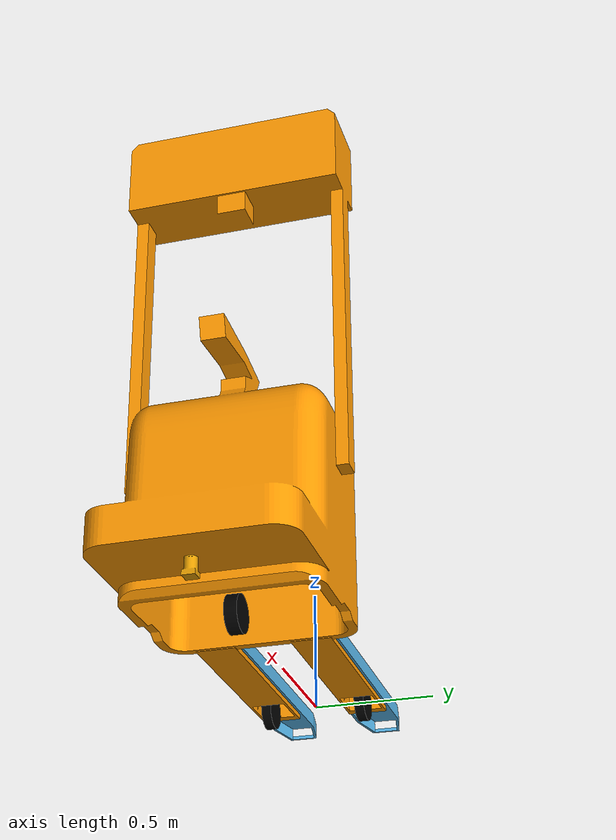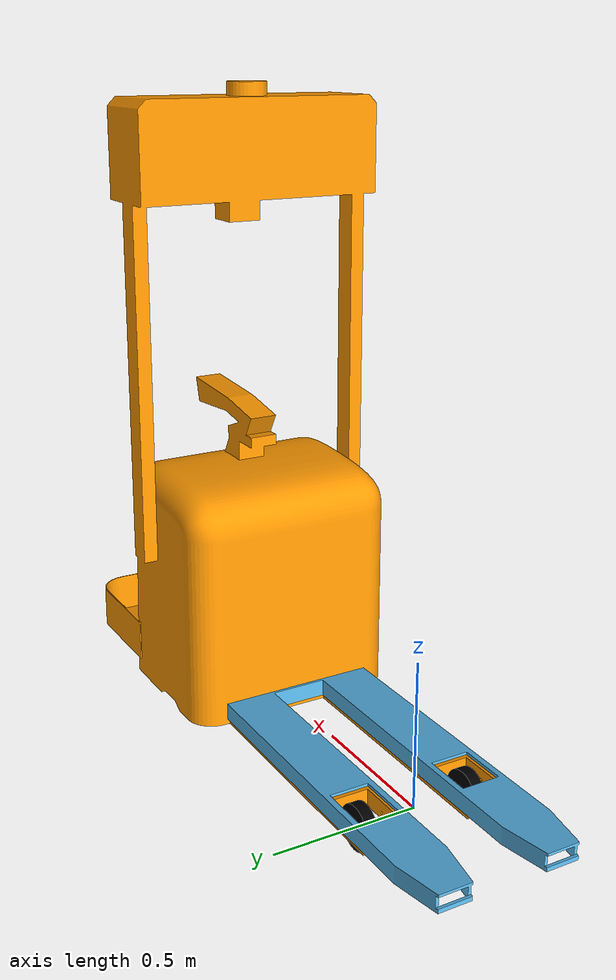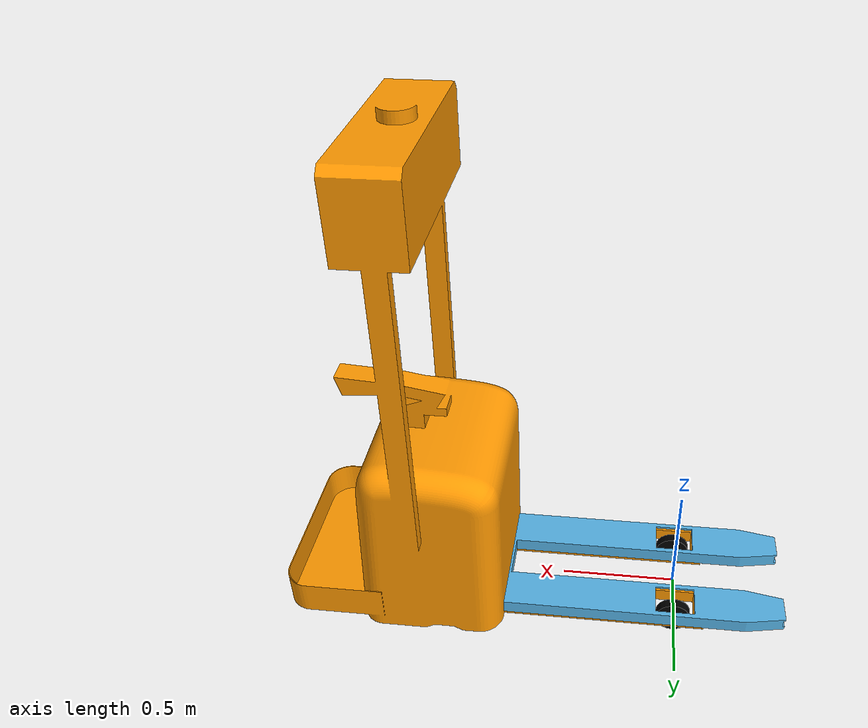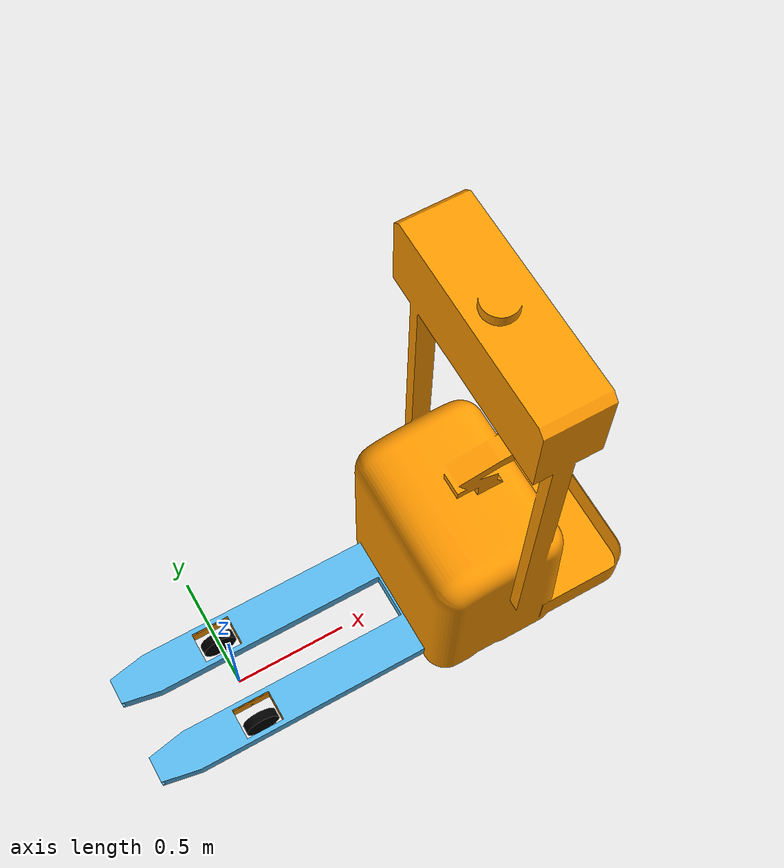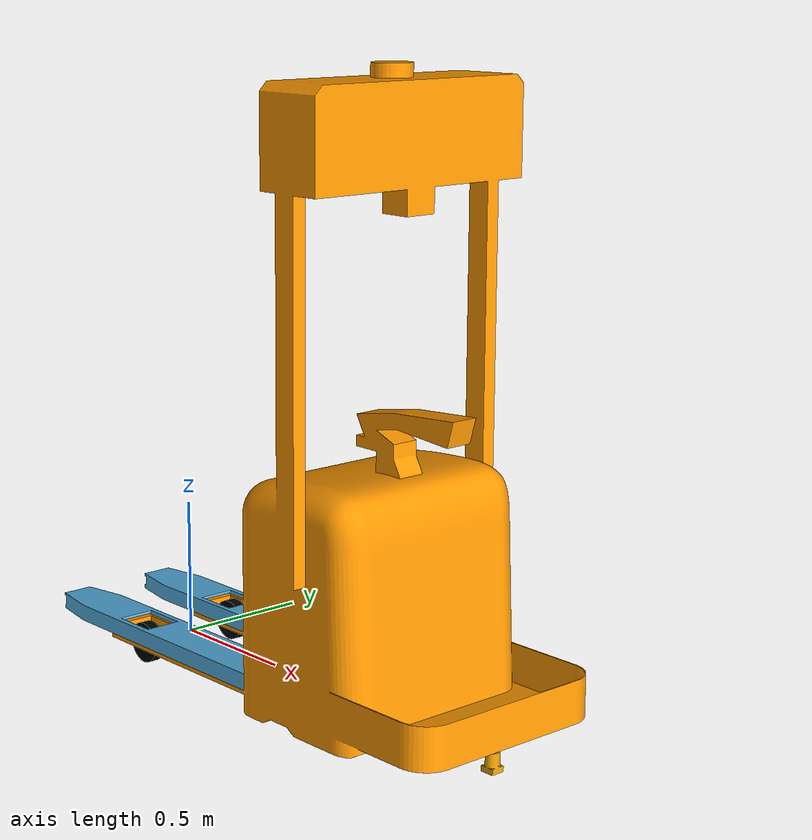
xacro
<?xml version="1.0"?>
<robot name="robot_1" xmlns:xacro="http://ros.org/wiki/xacro">
    <xacro:arg name="robot_name" default="robot1"/>
    <!-- Определение аргумента для namespace с дефолтным значением -->
    <xacro:include filename="$(find multi_robots_rmf_nav2)/urdf/materials.xacro"/>
    <xacro:include filename="$(find multi_robots_rmf_nav2)/urdf/macros.xacro"/>
    <xacro:include filename="$(find multi_robots_rmf_nav2)/urdf/warehouse_bot.xacro"/>
    <xacro:include filename="$(find multi_robots_rmf_nav2)/urdf/gazebo_control.xacro"/>
    <xacro:include filename="$(find multi_robots_rmf_nav2)/urdf/ros2_control.xacro"/>

    <xacro:robot_gazebo_systems robot_name="$(arg robot_name)"/>
    <xacro:robot_gazebo_sensors robot_name="$(arg robot_name)"/>
</robot>

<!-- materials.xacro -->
<robot name="warehouse_bot" xmlns:xacro="http://ros.org/wiki/xacro">

  <material name="black">
    <color rgba="0.0 0.0 0.0 1.0" />
  </material>

  <material name="blue">
    <color rgba="0.0 0.0 0.8 1.0" />
  </material>

  <material name="green">
    <color rgba="0.0 0.8 0.0 1.0" />
  </material>

  <material name="grey">
    <color rgba="0.2 0.2 0.2 1.0" />
  </material>

  <material name="orange">
    <color rgba="${255/255} ${108/255} ${10/255} 1.0" />
  </material>

  <material name="brown">
    <color rgba="${222/255} ${207/255} ${195/255} 1.0" />
  </material>

  <material name="red">
    <color rgba="0.8 0.0 0.0 1.0" />
  </material>

  <material name="white">
    <color rgba="1.0 1.0 1.0 1.0" />
  </material>

</robot>

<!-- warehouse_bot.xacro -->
<robot name="robot_1" xmlns:xacro="http://ros.org/wiki/xacro">
    <xacro:arg name="gpu" default="false"/>
    <xacro:property name="gpu" value="$(arg gpu)" />
    <material name="Black">
      <color rgba="0 0 0 1" />
    </material>
    <material name="Grey">
      <color rgba="0.8 0.8 0.8 1" />
    </material>
    <material name="Orange">
      <color rgba="1 0.6 0 1" />
    </material>
    <material name="White">
      <color rgba="1 1 1 1" />
    </material>

    <link name="base_link">
    </link>

    <!-- BASE_FOOTPRINT LINK -->

    <joint name="base_footprint_joint" type="fixed">
        <parent link="base_link"/>
        <child link="base_footprint"/>
        <origin xyz="0 0 0" rpy="0 0 0"/>
    </joint>

    <link name="base_footprint">
    </link>

    <joint name="chassis_joint" type="fixed">
        <parent link="base_link"/>
        <child link="chassis"/>
        <origin xyz="0 0 0"/>
    </joint>

    <!-- Chassis -->
    <link name="chassis">
      <visual>
        <origin xyz="0 0 -0.02" rpy="0 0 0"/>
        <geometry>
          <mesh filename="file://$(find warehouse_bot)/meshes/chassis.stl" scale="0.001 0.001 0.001"/>
        </geometry>
        <material name="Orange"/>
      </visual>
      <collision>
        <origin xyz="0 0 -0.02" rpy="0 0 0"/>
        <geometry>
          <mesh filename="file://$(find warehouse_bot)/meshes/chassis.stl" scale="0.001 0.001 0.001"/>
        </geometry>
      </collision>
      <inertial>
        <origin xyz="0 0 0" rpy="0 0 0" />
        <mass value="70" />
        <inertia ixx="0.011642" iyy="0.035651" izz="0.038255" ixy="0.000148" iyz="-9.3e-05" ixz="0.000342"/>
      </inertial>
    </link>

        <!-- Front Steering Hinge Link -->
    <link name="front_steering_hinge_link">
      <inertial>
        <origin xyz="0 0 0" rpy="0 0 0" />
        <mass value="50" />
        <inertia ixx="4E-06" ixy="0" ixz="0" iyy="4E-06" iyz="0" izz="4E-06" />
      </inertial>
      <visual>
        <origin xyz="0 0 0" rpy="0 0 0" />
        <geometry>
          <box size="0.005 0.005 0.005"/>
        </geometry>
      </visual>
    </link>

    <joint name="front_steering_hinge_joint" type="revolute">
      <origin xyz="1.1 0 0" rpy="0 0 0" />
      <parent link="chassis" />
      <child link="front_steering_hinge_link" />
      <axis xyz="0 0 1" />
      <limit lower="-1.57" upper="1.57" effort="10" velocity="100" />
    </joint>

    <!-- Front Wheel Link -->
    <link name="front_wheel_link">
      <inertial>
        <origin xyz="0.0 0.0 0.0" rpy="0 0 0"/>
        <mass value="2"/>
        <inertia ixx="0.00025" iyy="0.00014" izz="0.00014" ixy="0.0" iyz="0.0" ixz="0.0"/>
      </inertial>
      <visual>
        <origin xyz="0 0 0" rpy="0 0 0"/>
        <geometry>
          <cylinder length="0.05" radius="0.075" />
        </geometry>
        <material name="black"/>
      </visual>
      <collision>
        <origin xyz="0 0 0" rpy="0 0 0"/>
        <geometry>
          <cylinder length="0.05" radius="0.075" />
        </geometry>
      </collision>
    </link>

    <joint name="front_wheel_joint" type="continuous">
      <origin xyz="0.0 0.0 0.0" rpy="-1.57 1.57 0" />
      <parent link="front_steering_hinge_link" />
      <child link="front_wheel_link" />
      <axis xyz="0 0 1" />
      <limit effort="10" velocity="100" />
    </joint>

  <!-- Rear Left Wheel Link -->
  <link name="lr_wheel_link">
    <inertial>
      <origin xyz="0.0 0.0 0.0" rpy="0 0 0"/>
      <mass value="2"/>
      <inertia ixx="0.00025" iyy="0.00014" izz="0.00014" ixy="0.0" iyz="0.0" ixz="0.0"/>
    </inertial>
    <visual>
        <geometry>
          <cylinder length="0.04" radius="0.075" />
        </geometry>
      <material name="black"/>
    </visual>
    <collision>
      <origin xyz="0 0 0" rpy="0 0 0"/>
        <geometry>
          <cylinder length="0.04" radius="0.075" />
        </geometry>
    </collision>
  </link>

  <joint name="lr_wheel_joint" type="continuous">
    <origin xyz="0 0.2 0" rpy="-1.57 0 0" />
    <parent link="chassis" />
    <child link="lr_wheel_link" />
    <axis xyz="0 0 1" />
  </joint>

  <!-- Rear Right Wheel Link -->
  <link name="rr_wheel_link">
    <inertial>
      <origin xyz="0.0 0.0 0.0" rpy="0 0 0"/>
      <mass value="0.20069792517970372"/>
      <inertia ixx="0.00025" iyy="0.00014" izz="0.00014" ixy="0.0" iyz="0.0" ixz="0.0"/>
    </inertial>
    <visual>
      <origin xyz="0 0 0" rpy="0 0 0"/>
        <geometry>
          <cylinder length="0.04" radius="0.075" />
        </geometry>
      <material name="black"/>
    </visual>
    <collision>
      <origin xyz="0 0 0" rpy="0 0 0"/>
        <geometry>
          <cylinder length="0.04" radius="0.075" />
        </geometry>
    </collision>
  </link>

  <joint name="rr_wheel_joint" type="continuous">
    <origin xyz="0 -0.2 0" rpy="-1.57 0 0" />
    <parent link="chassis" />
    <child link="rr_wheel_link" />
    <axis xyz="0 0 1" />
  </joint>

  <!-- IMU Link -->
  <link name="imu_link">
    <inertial>
      <mass value="0.01"/>
      <inertia ixx="1.0" ixy="0" ixz="0" iyy="1.0" iyz="0" izz="1.0"/>
    </inertial>
  </link>

  <joint name="imu_joint" type="fixed">
    <origin xyz="0.2715 0 0.041" rpy="0 0 0"/>
    <parent link="chassis"/>
    <child link="imu_link"/>
  </joint>

  <link name="laser_frame_under">
    <inertial>
      <origin xyz="0 0 0" rpy="0 0 0"/>
      <mass value="10"/>
      <inertia ixx="0.00068" iyy="0.00068" izz="0.000389" ixy="0.0" iyz="-0.0" ixz="-0.0"/>
    </inertial>
    <visual>
      <origin xyz="-1.475 0 0.005" rpy="3.14 0 0"/>
      <geometry>
        <mesh filename="file://$(find warehouse_bot)/meshes/1line_lidar_1.stl" scale="0.001 0.001 0.001"/>
      </geometry>
    </visual>
    <collision>
      <origin xyz="-1.475 0 0.005" rpy="3.14 0 0"/>
      <geometry>
        <mesh filename="file://$(find warehouse_bot)/meshes/1line_lidar_1.stl" scale="0.001 0.001 0.001"/>
      </geometry>
    </collision>
  </link>

  <link name="fork_1">
    <inertial>
      <origin xyz="0 0 0" rpy="0 0 0"/>
      <mass value="10"/>
      <inertia ixx="0.1" ixy="0.0" ixz="0.0" iyy="0.1" iyz="0.0" izz="0.155" />
    </inertial>
    <visual>
      <origin xyz="0.0 0.0 -0.03" rpy="0 0 0"/>
      <geometry>
        <mesh filename="file://$(find warehouse_bot)/meshes/fork_1.stl" scale="0.001 0.001 0.001"/>
      </geometry>
    </visual>
    <collision>
      <origin xyz="0.0 0 -0.03" rpy="0 0 0"/>
      <geometry>
        <mesh filename="file://$(find warehouse_bot)/meshes/fork_1.stl" scale="0.001 0.001 0.001"/>
      </geometry>
    </collision>
  </link>

  <joint name="fork_joint" type="fixed">
    <origin xyz="0.0 0.0 0.022893" rpy="0 0 0"/>
    <parent link="chassis"/>
    <child link="fork_1"/>
  </joint>

  <joint name="laser_joint1" type="fixed">
    <origin xyz="1.6 0.0 0.02" rpy="0 0 0"/>
    <parent link="chassis"/>
    <child link="laser_frame_under"/>
  </joint>

</robot>
